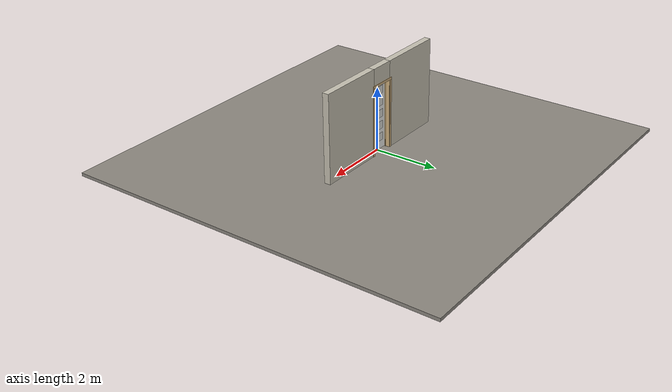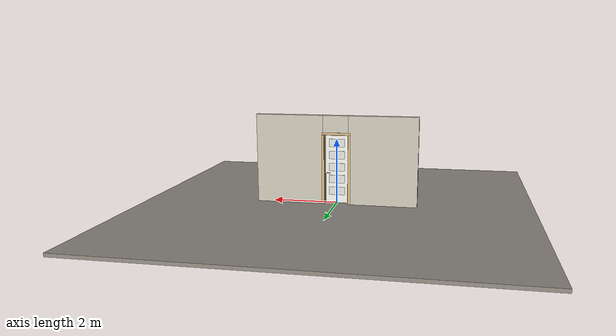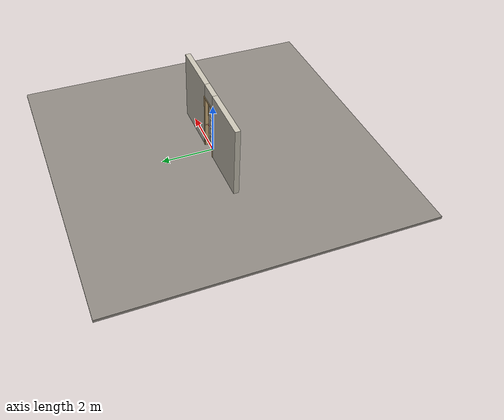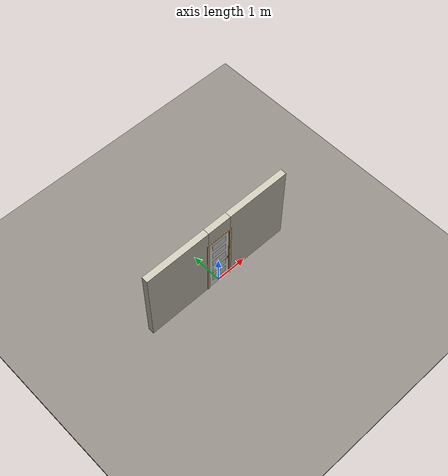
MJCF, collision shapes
<?xml version="1.0" ?>
<mujoco model="db0390_swing_single_full">
  <compiler angle="radian" meshdir="../../hardware" texturedir="../../textures" autolimits="true" inertiafromgeom="false"/>
  <option timestep="0.002" integrator="implicitfast" cone="elliptic" impratio="10" noslip_iterations="3">
    <flag multiccd="enable"/>
  </option>
  <size memory="16M"/>
  <default>
    <geom condim="4" solref="0.005 1" solimp="0.95 0.99 0.001"/>
    <joint solreflimit="0.005 1" solimplimit="0.95 0.99 0.001"/>
    <tendon solreflimit="0.005 1"/>
    <equality solref="0.002 1"/>
  </default>
  <visual>
    <headlight ambient="0.4 0.4 0.4" diffuse="0.7 0.7 0.7" specular="0.2 0.2 0.2"/>
    <quality shadowsize="4096"/>
    <map znear="0.01" zfar="60"/>
  </visual>
  <asset>
    <mesh name="hinge_96510cf394" file="hinge_96510cf394.obj"/>
    <mesh name="hinge_jamb_7fd4ca52b2" file="hinge_jamb_7fd4ca52b2.obj"/>
    <mesh name="lever_748f08efca" file="lever_748f08efca.obj"/>
    <material name="mat_floor" rgba="0.55 0.53 0.5 1" specular="0.2" shininess="0.15" reflectance="0"/>
    <material name="mat_wall" rgba="0.78 0.76 0.7 1" specular="0.2" shininess="0.1" reflectance="0"/>
    <material name="mat_leaf" rgba="0.93 0.93 0.91 1" specular="0.2" shininess="0.6" reflectance="0"/>
    <material name="mat_leaf_panel" rgba="0.856 0.856 0.837 1" specular="0.2" shininess="0.6" reflectance="0"/>
    <material name="mat_hinge" rgba="0.65 0.66 0.68 1" specular="0.74" shininess="0.5" reflectance="0.36"/>
    <material name="mat_op_chrome" rgba="0.9 0.9 0.92 1" specular="0.8" shininess="0.9" reflectance="0.4"/>
    <material name="mat_trim" rgba="0.85 0.66 0.3 1" specular="0.8" shininess="0.75" reflectance="0.4"/>
    <material name="mat_bolt" rgba="0.85 0.66 0.3 1" specular="0.8" shininess="0.75" reflectance="0.4"/>
    <material name="mat_frame" rgba="0.82 0.7 0.5 1" specular="0.2" shininess="0.45" reflectance="0"/>
    <texture name="skybox" type="skybox" builtin="gradient" rgb1="0.6 0.7 0.85" rgb2="0.9 0.92 0.95" width="256" height="256"/>
  </asset>
  <worldbody>
    <light name="sun" pos="1.5 -2.5 4" dir="-0.3 0.5 -0.8" directional="true" diffuse="0.8 0.8 0.8" specular="0.3 0.3 0.3" castshadow="true"/>
    <light name="fill" pos="-1.5 2.5 3" dir="0.3 -0.5 -0.7" directional="true" diffuse="0.35 0.35 0.4" castshadow="false"/>
    <camera name="robot_view" pos="0 -2.562312 1.812087" xyaxes="1 0 0 0 0.26963 0.962964" fovy="52"/>
    <camera name="far_view" pos="0 2.713312 1.812087" xyaxes="-1 0 0 0 -0.26963 0.962964" fovy="52"/>
    <camera name="iso" pos="2.004737 -2.140262 2.234138" xyaxes="0.741536 0.670913 0 -0.242917 0.268487 0.932151" fovy="46"/>
    <camera name="detail_handle" pos="0.3854 -0.8725 1.245" xyaxes="0.97561 0.219512 0 -0.070934 0.315262 0.94635" fovy="38"/>
    <geom name="floor" type="box" size="6 6 0.05" pos="0 0 -0.05" material="mat_floor" group="0" contype="1" conaffinity="1" friction="0.8 0.005 0.0001" density="2400"/>
    <geom name="wall_left" type="box" size="1.061 0.1 1.3735" pos="-1.439 0.0755 1.3735" material="mat_wall" group="0" contype="1" conaffinity="1" friction="0.6 0.005 0.0001" density="800"/>
    <geom name="wall_right" type="box" size="1.046 0.1 1.3735" pos="1.454 0.0755 1.3735" material="mat_wall" group="0" contype="1" conaffinity="1" friction="0.6 0.005 0.0001" density="800"/>
    <geom name="wall_header" type="box" size="0.393 0.1 0.2755" pos="0.015 0.0755 2.4715" material="mat_wall" group="0" contype="1" conaffinity="1" friction="0.6 0.005 0.0001" density="800"/>
    <geom name="hinge_0_jamb" type="mesh" mesh="hinge_jamb_7fd4ca52b2" pos="-0.356 -0.0245 0.259" material="mat_hinge" group="1" contype="0" conaffinity="0" density="7850"/>
    <geom name="hinge_1_jamb" type="mesh" mesh="hinge_jamb_7fd4ca52b2" pos="-0.356 -0.0245 1.076" material="mat_hinge" group="1" contype="0" conaffinity="0" density="7850"/>
    <geom name="hinge_2_jamb" type="mesh" mesh="hinge_jamb_7fd4ca52b2" pos="-0.356 -0.0245 1.963" material="mat_hinge" group="1" contype="0" conaffinity="0" density="7850"/>
    <geom name="jamb_hinge" type="box" size="0.0095 0.1 1.0735" pos="-0.3685 0.0755 1.0735" material="mat_frame" group="0" contype="1" conaffinity="1" friction="0.6 0.005 0.0001" density="400"/>
    <geom name="strike_965_wall_n" type="box" size="0.0245 0.083825 0.0167" pos="0.3835 0.091675 0.965" material="mat_frame" group="0" contype="1" conaffinity="1" friction="0.6 0.005 0.0001" density="400"/>
    <geom name="strike_965_wall_p" type="box" size="0.0245 0.008 0.0167" pos="0.3835 -0.01585 0.965" material="mat_frame" group="0" contype="1" conaffinity="1" friction="0.6 0.005 0.0001" density="400"/>
    <geom name="strike_965_ramp" type="box" size="0.0245 0.01649 0.0167" pos="0.388136 -0.028673 0.965" quat="0.977148 0 0 0.212558" material="mat_frame" group="0" contype="1" conaffinity="1" friction="0.12 0.005 0.0001" density="400"/>
    <geom name="strike_965_back" type="box" size="0.01615 0.00785 0.0167" pos="0.39185 0 0.965" material="mat_frame" group="0" contype="1" conaffinity="1" friction="0.6 0.005 0.0001" density="400"/>
    <geom name="jamb_strike_0" type="box" size="0.0245 0.1 0.47415" pos="0.3835 0.0755 0.47415" material="mat_frame" group="0" contype="1" conaffinity="1" friction="0.6 0.005 0.0001" density="400"/>
    <geom name="jamb_strike_1" type="box" size="0.0245 0.1 0.58265" pos="0.3835 0.0755 1.56435" material="mat_frame" group="0" contype="1" conaffinity="1" friction="0.6 0.005 0.0001" density="400"/>
    <geom name="jamb_head" type="box" size="0.393 0.1 0.0095" pos="0.015 0.0755 2.1565" material="mat_frame" group="0" contype="1" conaffinity="1" friction="0.6 0.005 0.0001" density="400"/>
    <geom name="head_stud" type="box" size="0.393 0.1 0.015" pos="0.015 0.0755 2.181" material="mat_wall" group="0" contype="1" conaffinity="1" friction="0.6 0.005 0.0001" density="500"/>
    <geom name="stop_hinge" type="box" size="0.0055 0.016 1.0735" pos="-0.3535 0.034 1.0735" material="mat_frame" group="0" contype="1" conaffinity="1" friction="0.6 0.005 0.0001" density="400"/>
    <geom name="stop_strike" type="box" size="0.0055 0.016 1.0735" pos="0.3535 0.034 1.0735" material="mat_frame" group="0" contype="1" conaffinity="1" friction="0.6 0.005 0.0001" density="400"/>
    <geom name="stop_head" type="box" size="0.359 0.016 0.0055" pos="0 0.034 2.1415" material="mat_frame" group="0" contype="1" conaffinity="1" friction="0.6 0.005 0.0001" density="400"/>
    <geom name="casing_l_n" type="box" size="0.035 0.008 1.083" pos="-0.408 -0.0325 1.0735" material="mat_frame" group="2" contype="0" conaffinity="0" density="400"/>
    <geom name="casing_r_n" type="box" size="0.035 0.008 1.083" pos="0.408 -0.0325 1.0735" material="mat_frame" group="2" contype="0" conaffinity="0" density="400"/>
    <geom name="casing_h_n" type="box" size="0.443 0.008 0.035" pos="0 -0.0325 2.196" material="mat_frame" group="2" contype="0" conaffinity="0" density="400"/>
    <geom name="casing_l_p" type="box" size="0.035 0.008 1.083" pos="-0.408 0.1835 1.0735" material="mat_frame" group="2" contype="0" conaffinity="0" density="400"/>
    <geom name="casing_r_p" type="box" size="0.035 0.008 1.083" pos="0.408 0.1835 1.0735" material="mat_frame" group="2" contype="0" conaffinity="0" density="400"/>
    <geom name="casing_h_p" type="box" size="0.443 0.008 0.035" pos="0 0.1835 2.196" material="mat_frame" group="2" contype="0" conaffinity="0" density="400"/>
    <site name="approach_point" pos="0 -1.5 0" quat="1 0 0 0" size="0.05" rgba="0.2 0.9 0.2 0.5" group="4"/>
    <site name="goal_point" pos="0 1.5 0" quat="1 0 0 0" size="0.05" rgba="0.2 0.9 0.2 0.5" group="4"/>
    <site name="door_plane_center" pos="0 0 1.0735" quat="1 0 0 0" size="0.02" rgba="0.2 0.9 0.2 0.5" group="4"/>
    <body name="leaf" pos="-0.359 0 0">
      <inertial pos="0.35451 -0.00017 1.076241" mass="35.512285" quat="-0.499737 0.500426 -0.499569 -0.500268" diaginertia="1.53500229 13.5184766 15.046004862"/>
      <joint name="leaf_hinge" type="hinge" axis="0 0 -1" pos="0.003 -0.0245 0" limited="true" range="0 1.745329" damping="0.14849" frictionloss="0.329296" armature="0.02"/>
      <geom name="leaf_slab" type="box" size="0.3555 0.0175 1.067" pos="0.3585 0 1.076" material="mat_leaf" group="0" contype="1" conaffinity="1" friction="0.4 0.005 0.0001" density="1"/>
      <geom name="leaf_panel_0_n" type="box" size="0.2455 0.003 0.123256" pos="0.3585 -0.0205 0.386996" material="mat_leaf_panel" group="1" contype="0" conaffinity="0" density="1"/>
      <geom name="leaf_panel_0_p" type="box" size="0.2455 0.003 0.123256" pos="0.3585 0.0205 0.386996" material="mat_leaf_panel" group="1" contype="0" conaffinity="0" density="1"/>
      <geom name="leaf_panel_1_n" type="box" size="0.2455 0.003 0.123256" pos="0.3585 -0.0205 0.763508" material="mat_leaf_panel" group="1" contype="0" conaffinity="0" density="1"/>
      <geom name="leaf_panel_1_p" type="box" size="0.2455 0.003 0.123256" pos="0.3585 0.0205 0.763508" material="mat_leaf_panel" group="1" contype="0" conaffinity="0" density="1"/>
      <geom name="leaf_panel_2_n" type="box" size="0.2455 0.003 0.123256" pos="0.3585 -0.0205 1.14002" material="mat_leaf_panel" group="1" contype="0" conaffinity="0" density="1"/>
      <geom name="leaf_panel_2_p" type="box" size="0.2455 0.003 0.123256" pos="0.3585 0.0205 1.14002" material="mat_leaf_panel" group="1" contype="0" conaffinity="0" density="1"/>
      <geom name="leaf_panel_3_n" type="box" size="0.2455 0.003 0.123256" pos="0.3585 -0.0205 1.516532" material="mat_leaf_panel" group="1" contype="0" conaffinity="0" density="1"/>
      <geom name="leaf_panel_3_p" type="box" size="0.2455 0.003 0.123256" pos="0.3585 0.0205 1.516532" material="mat_leaf_panel" group="1" contype="0" conaffinity="0" density="1"/>
      <geom name="leaf_panel_4_n" type="box" size="0.2455 0.003 0.123256" pos="0.3585 -0.0205 1.893044" material="mat_leaf_panel" group="1" contype="0" conaffinity="0" density="1"/>
      <geom name="leaf_panel_4_p" type="box" size="0.2455 0.003 0.123256" pos="0.3585 0.0205 1.893044" material="mat_leaf_panel" group="1" contype="0" conaffinity="0" density="1"/>
      <geom name="hinge_0" type="mesh" mesh="hinge_96510cf394" pos="0.003 -0.0245 0.259" material="mat_hinge" group="1" contype="0" conaffinity="0" density="7850"/>
      <geom name="hinge_1" type="mesh" mesh="hinge_96510cf394" pos="0.003 -0.0245 1.076" material="mat_hinge" group="1" contype="0" conaffinity="0" density="7850"/>
      <geom name="hinge_2" type="mesh" mesh="hinge_96510cf394" pos="0.003 -0.0245 1.963" material="mat_hinge" group="1" contype="0" conaffinity="0" density="7850"/>
      <geom name="leaf_latch_bolt_faceplate" type="box" size="0.0006 0.01235 0.0267" pos="0.7134 0 0.965" material="mat_bolt" group="1" contype="0" conaffinity="0" density="8500"/>
      <site name="leaf_edge_mid" pos="0.714 0 1.067" quat="1 0 0 0" size="0.02" rgba="0.2 0.9 0.2 0.5" group="4"/>
      <body name="leaf_handle" pos="0.654 0 0.965">
        <inertial pos="-0.024417 0 0" mass="0.839807" quat="0.707107 0 0 -0.707107" diaginertia="0.001182467 0.002815434 0.003861215"/>
        <joint name="leaf_handle_hinge" type="hinge" axis="0 -1 0" limited="true" range="0 0.87" damping="0.205084" frictionloss="0.04" stiffness="0.9" springref="-0.444444" armature="0.01"/>
        <geom name="leaf_handle_spindle" type="cylinder" size="0.006 0.0255" pos="0 0 0" quat="0.707107 -0.707107 0 0" material="mat_op_chrome" group="1" contype="0" conaffinity="0" density="7850"/>
        <geom name="leaf_handle_lever_n" type="mesh" mesh="lever_748f08efca" pos="0 -0.0175 0" quat="0.707107 0.707107 0 0" material="mat_op_chrome" group="1" contype="0" conaffinity="0" density="3000"/>
        <geom name="leaf_handle_lever_col_n" type="capsule" size="0.008 0.048" pos="-0.056 -0.0725 0" quat="0.707107 0 -0.707107 0" material="mat_op_chrome" group="3" contype="1" conaffinity="1" rgba="0.8 0.3 0.3 0.25" friction="0.7 0.01 0.0001" density="3000"/>
        <geom name="leaf_handle_hub_col_n" type="cylinder" size="0.012 0.022" pos="0 -0.0475 0" quat="0.707107 -0.707107 0 0" material="mat_op_chrome" group="3" contype="1" conaffinity="1" rgba="0.8 0.3 0.3 0.25" friction="0.6 0.005 0.0001" density="3000"/>
        <geom name="leaf_handle_lever_p" type="mesh" mesh="lever_748f08efca" pos="0 0.0175 0" quat="-0.707107 0.707107 0 0" material="mat_op_chrome" group="1" contype="0" conaffinity="0" density="3000"/>
        <geom name="leaf_handle_lever_col_p" type="capsule" size="0.008 0.048" pos="-0.056 0.0725 0" quat="0.707107 0 -0.707107 0" material="mat_op_chrome" group="3" contype="1" conaffinity="1" rgba="0.8 0.3 0.3 0.25" friction="0.7 0.01 0.0001" density="3000"/>
        <geom name="leaf_handle_hub_col_p" type="cylinder" size="0.012 0.022" pos="0 0.0475 0" quat="0.707107 -0.707107 0 0" material="mat_op_chrome" group="3" contype="1" conaffinity="1" rgba="0.8 0.3 0.3 0.25" friction="0.6 0.005 0.0001" density="3000"/>
        <site name="leaf_handle_grip_n" pos="-0.0896 -0.0725 0" quat="1 0 0 0" size="0.012" rgba="0.2 0.9 0.2 0.5" group="4"/>
        <site name="leaf_handle_grip_p" pos="-0.0896 0.0725 0" quat="1 0 0 0" size="0.012" rgba="0.2 0.9 0.2 0.5" group="4"/>
      </body>
      <body name="leaf_latch_bolt" pos="0.714 0 0.965">
        <inertial pos="-0.00865 0 0" mass="0.041419" quat="0.92388 -0.382683 0 0" diaginertia="0.000000798 0.000005598 0.000005598"/>
        <joint name="leaf_latch_bolt_slide" type="slide" axis="-1 0 0" limited="true" range="0 0.0127" damping="2" frictionloss="0.3" stiffness="300" springref="-0.008333" armature="0.1"/>
        <geom name="leaf_latch_bolt_capsule" type="capsule" size="0.00635 0.015" pos="-0.00865 0 0" quat="0.707107 0 0.707107 0" material="mat_bolt" group="0" contype="1" conaffinity="1" friction="0.2 0.005 0.0001" density="8500"/>
      </body>
    </body>
  </worldbody>
  <tendon>
    <fixed name="leaf_latch_bolt_coupling" limited="true" range="0 10">
      <joint joint="leaf_latch_bolt_slide" coef="1"/>
      <joint joint="leaf_handle_hinge" coef="-0.016076"/>
    </fixed>
  </tendon>
  <sensor>
    <jointpos name="leaf_hinge_pos" joint="leaf_hinge"/>
    <jointvel name="leaf_hinge_vel" joint="leaf_hinge"/>
    <jointpos name="leaf_handle_hinge_pos" joint="leaf_handle_hinge"/>
    <jointvel name="leaf_handle_hinge_vel" joint="leaf_handle_hinge"/>
    <jointpos name="leaf_latch_bolt_slide_pos" joint="leaf_latch_bolt_slide"/>
    <jointvel name="leaf_latch_bolt_slide_vel" joint="leaf_latch_bolt_slide"/>
  </sensor>
</mujoco>
